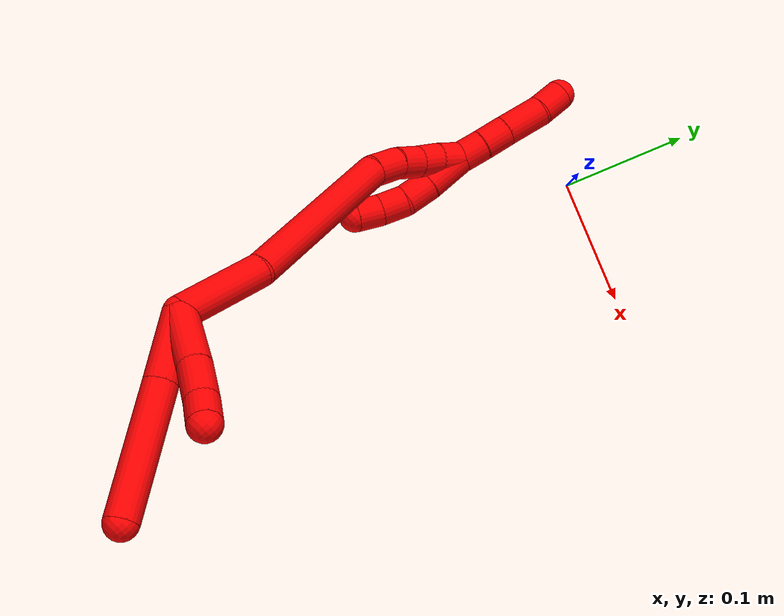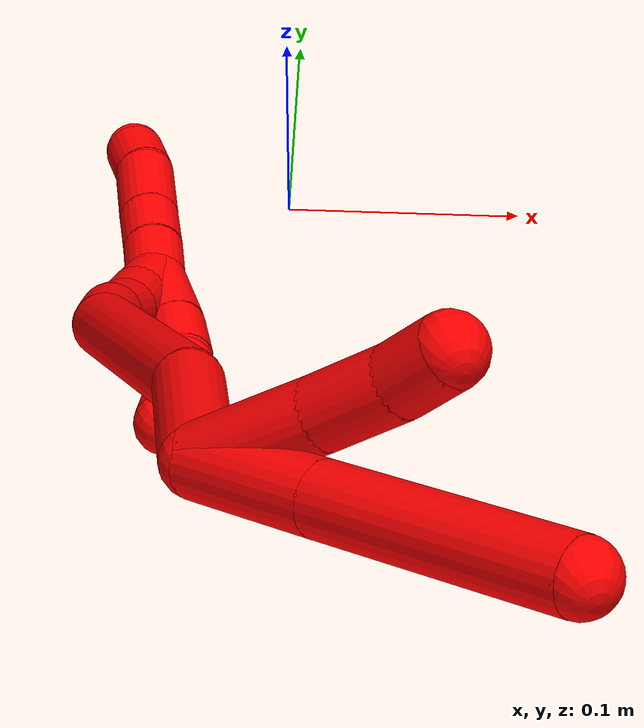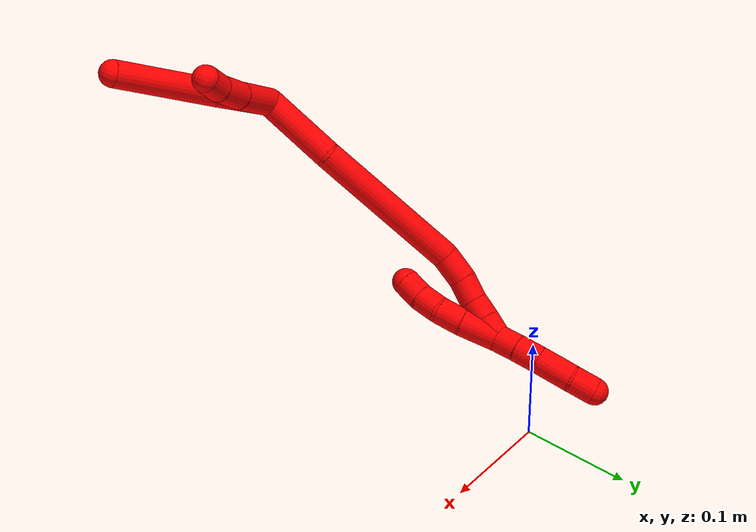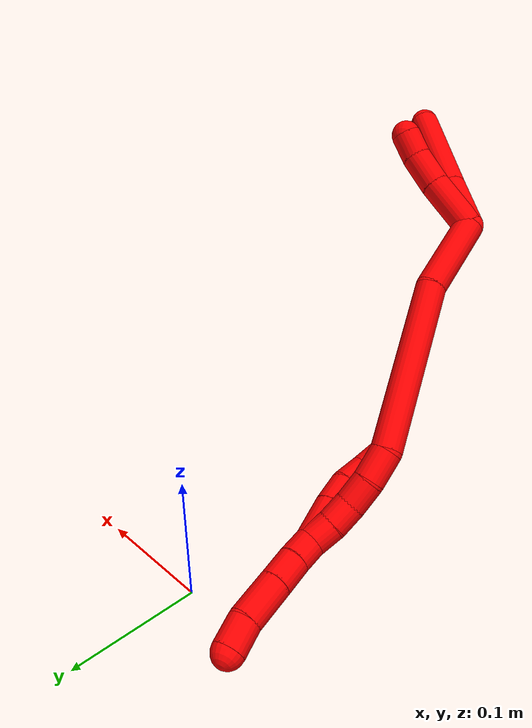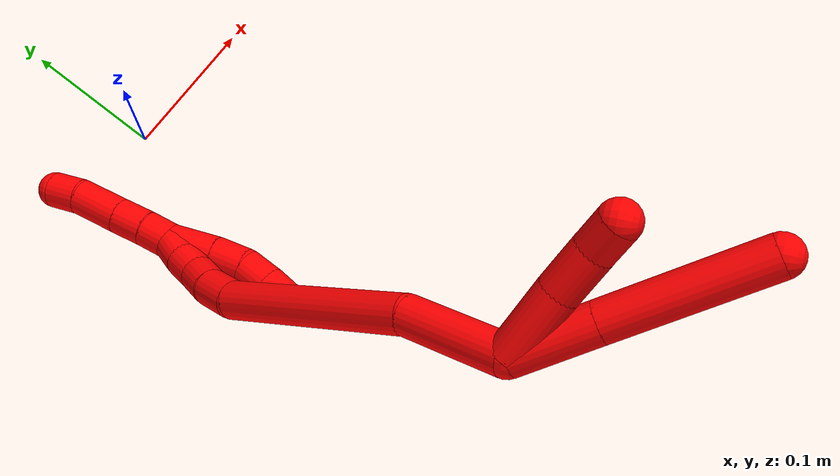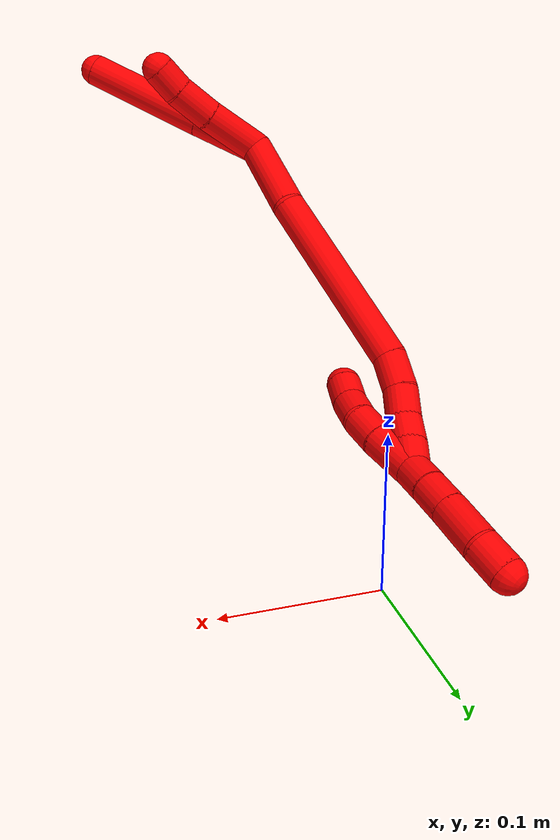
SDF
<sdf version="1.7">
 <world name="default">
  <model name="2">
   <static>0</static>
   <link name="2">
    <collision name="collision-cylinder-e_1_2_8">
     <pose>0.002971 0.01373 0.021989 -0.558176 0.114096 -0.032729</pose>
     <geometry><cylinder><radius>0.0125</radius><length>0.052188</length></cylinder></geometry>
     <surface>
      <friction><ode><mu>1.16</mu><mu2>1.16</mu2><slip1>0</slip1><slip2>0</slip2></ode></friction>
      <contact><ode><kp>1e+06</kp><kd>1</kd><max_vel>0</max_vel><min_depth>0.001</min_depth></ode></contact>
     </surface>
    </collision>
    <visual name="visual-cylinder-e_1_2_8">
     <pose>0.002971 0.01373 0.021989 -0.558176 0.114096 -0.032729</pose>
     <geometry><cylinder><radius>0.0125</radius><length>0.052188</length></cylinder></geometry>
     <material><ambient>1 0 0 1</ambient></material>
    </visual>
    <collision name="collision-cylinder-e_2_8_6">
     <pose>0.010781 0.053226 0.085265 -0.557927 0.099107 -0.028409</pose>
     <geometry><cylinder><radius>0.0125</radius><length>0.097812</length></cylinder></geometry>
     <surface>
      <friction><ode><mu>1.16</mu><mu2>1.16</mu2><slip1>0</slip1><slip2>0</slip2></ode></friction>
      <contact><ode><kp>1e+06</kp><kd>1</kd><max_vel>0</max_vel><min_depth>0.001</min_depth></ode></contact>
     </surface>
    </collision>
    <visual name="visual-cylinder-e_2_8_6">
     <pose>0.010781 0.053226 0.085265 -0.557927 0.099107 -0.028409</pose>
     <geometry><cylinder><radius>0.0125</radius><length>0.097812</length></cylinder></geometry>
     <material><ambient>1 0 0 1</ambient></material>
    </visual>
    <collision name="collision-cylinder-e_1_2_9">
     <pose>-0.000553 0.020883 0.010839 -1.09204 -0.023495 0.014277</pose>
     <geometry><cylinder><radius>0.0125</radius><length>0.047069</length></cylinder></geometry>
     <surface>
      <friction><ode><mu>1.16</mu><mu2>1.16</mu2><slip1>0</slip1><slip2>0</slip2></ode></friction>
      <contact><ode><kp>1e+06</kp><kd>1</kd><max_vel>0</max_vel><min_depth>0.001</min_depth></ode></contact>
     </surface>
    </collision>
    <visual name="visual-cylinder-e_1_2_9">
     <pose>-0.000553 0.020883 0.010839 -1.09204 -0.023495 0.014277</pose>
     <geometry><cylinder><radius>0.0125</radius><length>0.047069</length></cylinder></geometry>
     <material><ambient>1 0 0 1</ambient></material>
    </visual>
    <collision name="collision-cylinder-e_2_9_10">
     <pose>-0.002587 0.055014 0.029185 -1.05525 -0.096993 0.05655</pose>
     <geometry><cylinder><radius>0.0125</radius><length>0.030599</length></cylinder></geometry>
     <surface>
      <friction><ode><mu>1.16</mu><mu2>1.16</mu2><slip1>0</slip1><slip2>0</slip2></ode></friction>
      <contact><ode><kp>1e+06</kp><kd>1</kd><max_vel>0</max_vel><min_depth>0.001</min_depth></ode></contact>
     </surface>
    </collision>
    <visual name="visual-cylinder-e_2_9_10">
     <pose>-0.002587 0.055014 0.029185 -1.05525 -0.096993 0.05655</pose>
     <geometry><cylinder><radius>0.0125</radius><length>0.030599</length></cylinder></geometry>
     <material><ambient>1 0 0 1</ambient></material>
    </visual>
    <collision name="collision-cylinder-e_3_10_5">
     <pose>-0.006983 0.077582 0.042108 -1.04439 -0.264068 0.152558</pose>
     <geometry><cylinder><radius>0.0125</radius><length>0.022332</length></cylinder></geometry>
     <surface>
      <friction><ode><mu>1.16</mu><mu2>1.16</mu2><slip1>0</slip1><slip2>0</slip2></ode></friction>
      <contact><ode><kp>1e+06</kp><kd>1</kd><max_vel>0</max_vel><min_depth>0.001</min_depth></ode></contact>
     </surface>
    </collision>
    <visual name="visual-cylinder-e_3_10_5">
     <pose>-0.006983 0.077582 0.042108 -1.04439 -0.264068 0.152558</pose>
     <geometry><cylinder><radius>0.0125</radius><length>0.022332</length></cylinder></geometry>
     <material><ambient>1 0 0 1</ambient></material>
    </visual>
    <collision name="collision-cylinder-e_1_2_11">
     <pose>0.012553 0.000754 -0.032271 -3.11822 0.37088 -3.01717</pose>
     <geometry><cylinder><radius>0.0125</radius><length>0.069269</length></cylinder></geometry>
     <surface>
      <friction><ode><mu>1.16</mu><mu2>1.16</mu2><slip1>0</slip1><slip2>0</slip2></ode></friction>
      <contact><ode><kp>1e+06</kp><kd>1</kd><max_vel>0</max_vel><min_depth>0.001</min_depth></ode></contact>
     </surface>
    </collision>
    <visual name="visual-cylinder-e_1_2_11">
     <pose>0.012553 0.000754 -0.032271 -3.11822 0.37088 -3.01717</pose>
     <geometry><cylinder><radius>0.0125</radius><length>0.069269</length></cylinder></geometry>
     <material><ambient>1 0 0 1</ambient></material>
    </visual>
    <collision name="collision-cylinder-e_2_11_12">
     <pose>0.051142 -0.015639 -0.128501 2.87965 0.374627 1.9269</pose>
     <geometry><cylinder><radius>0.0125</radius><length>0.142306</length></cylinder></geometry>
     <surface>
      <friction><ode><mu>1.16</mu><mu2>1.16</mu2><slip1>0</slip1><slip2>0</slip2></ode></friction>
      <contact><ode><kp>1e+06</kp><kd>1</kd><max_vel>0</max_vel><min_depth>0.001</min_depth></ode></contact>
     </surface>
    </collision>
    <visual name="visual-cylinder-e_2_11_12">
     <pose>0.051142 -0.015639 -0.128501 2.87965 0.374627 1.9269</pose>
     <geometry><cylinder><radius>0.0125</radius><length>0.142306</length></cylinder></geometry>
     <material><ambient>1 0 0 1</ambient></material>
    </visual>
    <collision name="collision-cylinder-e_3_12_13">
     <pose>0.084207 -0.03287 -0.203448 3.13395 0.569045 3.11547</pose>
     <geometry><cylinder><radius>0.0125</radius><length>0.026087</length></cylinder></geometry>
     <surface>
      <friction><ode><mu>1.16</mu><mu2>1.16</mu2><slip1>0</slip1><slip2>0</slip2></ode></friction>
      <contact><ode><kp>1e+06</kp><kd>1</kd><max_vel>0</max_vel><min_depth>0.001</min_depth></ode></contact>
     </surface>
    </collision>
    <visual name="visual-cylinder-e_3_12_13">
     <pose>0.084207 -0.03287 -0.203448 3.13395 0.569045 3.11547</pose>
     <geometry><cylinder><radius>0.0125</radius><length>0.026087</length></cylinder></geometry>
     <material><ambient>1 0 0 1</ambient></material>
    </visual>
    <collision name="collision-cylinder-e_4_13_14">
     <pose>0.098605 -0.032009 -0.222678 -3.02746 0.72632 -2.84316</pose>
     <geometry><cylinder><radius>0.0125</radius><length>0.022193</length></cylinder></geometry>
     <surface>
      <friction><ode><mu>1.16</mu><mu2>1.16</mu2><slip1>0</slip1><slip2>0</slip2></ode></friction>
      <contact><ode><kp>1e+06</kp><kd>1</kd><max_vel>0</max_vel><min_depth>0.001</min_depth></ode></contact>
     </surface>
    </collision>
    <visual name="visual-cylinder-e_4_13_14">
     <pose>0.098605 -0.032009 -0.222678 -3.02746 0.72632 -2.84316</pose>
     <geometry><cylinder><radius>0.0125</radius><length>0.022193</length></cylinder></geometry>
     <material><ambient>1 0 0 1</ambient></material>
    </visual>
    <collision name="collision-cylinder-e_5_14_15">
     <pose>0.111433 -0.029168 -0.239116 -2.91419 0.575594 -2.40524</pose>
     <geometry><cylinder><radius>0.0125</radius><length>0.020055</length></cylinder></geometry>
     <surface>
      <friction><ode><mu>1.16</mu><mu2>1.16</mu2><slip1>0</slip1><slip2>0</slip2></ode></friction>
      <contact><ode><kp>1e+06</kp><kd>1</kd><max_vel>0</max_vel><min_depth>0.001</min_depth></ode></contact>
     </surface>
    </collision>
    <visual name="visual-cylinder-e_5_14_15">
     <pose>0.111433 -0.029168 -0.239116 -2.91419 0.575594 -2.40524</pose>
     <geometry><cylinder><radius>0.0125</radius><length>0.020055</length></cylinder></geometry>
     <material><ambient>1 0 0 1</ambient></material>
    </visual>
    <collision name="collision-cylinder-e_6_15_1">
     <pose>0.122287 -0.023988 -0.255121 -2.74354 0.567058 -1.93063</pose>
     <geometry><cylinder><radius>0.0125</radius><length>0.020089</length></cylinder></geometry>
     <surface>
      <friction><ode><mu>1.16</mu><mu2>1.16</mu2><slip1>0</slip1><slip2>0</slip2></ode></friction>
      <contact><ode><kp>1e+06</kp><kd>1</kd><max_vel>0</max_vel><min_depth>0.001</min_depth></ode></contact>
     </surface>
    </collision>
    <visual name="visual-cylinder-e_6_15_1">
     <pose>0.122287 -0.023988 -0.255121 -2.74354 0.567058 -1.93063</pose>
     <geometry><cylinder><radius>0.0125</radius><length>0.020089</length></cylinder></geometry>
     <material><ambient>1 0 0 1</ambient></material>
    </visual>
    <collision name="collision-cylinder-e_1_1_16">
     <pose>0.128294 -0.018158 -0.272968 -2.89324 0.05902 -0.464449</pose>
     <geometry><cylinder><radius>0.0125</radius><length>0.020745</length></cylinder></geometry>
     <surface>
      <friction><ode><mu>1.16</mu><mu2>1.16</mu2><slip1>0</slip1><slip2>0</slip2></ode></friction>
      <contact><ode><kp>1e+06</kp><kd>1</kd><max_vel>0</max_vel><min_depth>0.001</min_depth></ode></contact>
     </surface>
    </collision>
    <visual name="visual-cylinder-e_1_1_16">
     <pose>0.128294 -0.018158 -0.272968 -2.89324 0.05902 -0.464449</pose>
     <geometry><cylinder><radius>0.0125</radius><length>0.020745</length></cylinder></geometry>
     <material><ambient>1 0 0 1</ambient></material>
    </visual>
    <collision name="collision-cylinder-e_2_16_17">
     <pose>0.129974 -0.013524 -0.293943 -2.95289 0.095627 -0.936294</pose>
     <geometry><cylinder><radius>0.0125</radius><length>0.022374</length></cylinder></geometry>
     <surface>
      <friction><ode><mu>1.16</mu><mu2>1.16</mu2><slip1>0</slip1><slip2>0</slip2></ode></friction>
      <contact><ode><kp>1e+06</kp><kd>1</kd><max_vel>0</max_vel><min_depth>0.001</min_depth></ode></contact>
     </surface>
    </collision>
    <visual name="visual-cylinder-e_2_16_17">
     <pose>0.129974 -0.013524 -0.293943 -2.95289 0.095627 -0.936294</pose>
     <geometry><cylinder><radius>0.0125</radius><length>0.022374</length></cylinder></geometry>
     <material><ambient>1 0 0 1</ambient></material>
    </visual>
    <collision name="collision-cylinder-e_3_17_18">
     <pose>0.132993 -0.008142 -0.321468 -2.94558 0.114861 -1.05827</pose>
     <geometry><cylinder><radius>0.0125</radius><length>0.034046</length></cylinder></geometry>
     <surface>
      <friction><ode><mu>1.16</mu><mu2>1.16</mu2><slip1>0</slip1><slip2>0</slip2></ode></friction>
      <contact><ode><kp>1e+06</kp><kd>1</kd><max_vel>0</max_vel><min_depth>0.001</min_depth></ode></contact>
     </surface>
    </collision>
    <visual name="visual-cylinder-e_3_17_18">
     <pose>0.132993 -0.008142 -0.321468 -2.94558 0.114861 -1.05827</pose>
     <geometry><cylinder><radius>0.0125</radius><length>0.034046</length></cylinder></geometry>
     <material><ambient>1 0 0 1</ambient></material>
    </visual>
    <collision name="collision-cylinder-e_4_18_4">
     <pose>0.136566 -0.004826 -0.349357 -3.13968 0.142554 -3.11477</pose>
     <geometry><cylinder><radius>0.0125</radius><length>0.022835</length></cylinder></geometry>
     <surface>
      <friction><ode><mu>1.16</mu><mu2>1.16</mu2><slip1>0</slip1><slip2>0</slip2></ode></friction>
      <contact><ode><kp>1e+06</kp><kd>1</kd><max_vel>0</max_vel><min_depth>0.001</min_depth></ode></contact>
     </surface>
    </collision>
    <visual name="visual-cylinder-e_4_18_4">
     <pose>0.136566 -0.004826 -0.349357 -3.13968 0.142554 -3.11477</pose>
     <geometry><cylinder><radius>0.0125</radius><length>0.022835</length></cylinder></geometry>
     <material><ambient>1 0 0 1</ambient></material>
    </visual>
    <collision name="collision-cylinder-e_1_1_19">
     <pose>0.127063 -0.021529 -0.245618 0.047663 -0.035725 -0.000852</pose>
     <geometry><cylinder><radius>0.0125</radius><length>0.034687</length></cylinder></geometry>
     <surface>
      <friction><ode><mu>1.16</mu><mu2>1.16</mu2><slip1>0</slip1><slip2>0</slip2></ode></friction>
      <contact><ode><kp>1e+06</kp><kd>1</kd><max_vel>0</max_vel><min_depth>0.001</min_depth></ode></contact>
     </surface>
    </collision>
    <visual name="visual-cylinder-e_1_1_19">
     <pose>0.127063 -0.021529 -0.245618 0.047663 -0.035725 -0.000852</pose>
     <geometry><cylinder><radius>0.0125</radius><length>0.034687</length></cylinder></geometry>
     <material><ambient>1 0 0 1</ambient></material>
    </visual>
    <collision name="collision-cylinder-e_2_19_20">
     <pose>0.125231 -0.023812 -0.216761 0.125558 -0.103796 -0.006531</pose>
     <geometry><cylinder><radius>0.0125</radius><length>0.023398</length></cylinder></geometry>
     <surface>
      <friction><ode><mu>1.16</mu><mu2>1.16</mu2><slip1>0</slip1><slip2>0</slip2></ode></friction>
      <contact><ode><kp>1e+06</kp><kd>1</kd><max_vel>0</max_vel><min_depth>0.001</min_depth></ode></contact>
     </surface>
    </collision>
    <visual name="visual-cylinder-e_2_19_20">
     <pose>0.125231 -0.023812 -0.216761 0.125558 -0.103796 -0.006531</pose>
     <geometry><cylinder><radius>0.0125</radius><length>0.023398</length></cylinder></geometry>
     <material><ambient>1 0 0 1</ambient></material>
    </visual>
    <collision name="collision-cylinder-e_3_20_21">
     <pose>0.122266 -0.029085 -0.195507 0.374459 -0.166512 -0.031616</pose>
     <geometry><cylinder><radius>0.0125</radius><length>0.021157</length></cylinder></geometry>
     <surface>
      <friction><ode><mu>1.16</mu><mu2>1.16</mu2><slip1>0</slip1><slip2>0</slip2></ode></friction>
      <contact><ode><kp>1e+06</kp><kd>1</kd><max_vel>0</max_vel><min_depth>0.001</min_depth></ode></contact>
     </surface>
    </collision>
    <visual name="visual-cylinder-e_3_20_21">
     <pose>0.122266 -0.029085 -0.195507 0.374459 -0.166512 -0.031616</pose>
     <geometry><cylinder><radius>0.0125</radius><length>0.021157</length></cylinder></geometry>
     <material><ambient>1 0 0 1</ambient></material>
    </visual>
    <collision name="collision-cylinder-e_4_21_3">
     <pose>0.116975 -0.036376 -0.17668 0.364123 -0.347791 -0.064659</pose>
     <geometry><cylinder><radius>0.0125</radius><length>0.020758</length></cylinder></geometry>
     <surface>
      <friction><ode><mu>1.16</mu><mu2>1.16</mu2><slip1>0</slip1><slip2>0</slip2></ode></friction>
      <contact><ode><kp>1e+06</kp><kd>1</kd><max_vel>0</max_vel><min_depth>0.001</min_depth></ode></contact>
     </surface>
    </collision>
    <visual name="visual-cylinder-e_4_21_3">
     <pose>0.116975 -0.036376 -0.17668 0.364123 -0.347791 -0.064659</pose>
     <geometry><cylinder><radius>0.0125</radius><length>0.020758</length></cylinder></geometry>
     <material><ambient>1 0 0 1</ambient></material>
    </visual>
    <collision name="collision-sphere-3">
     <pose>0.113438 -0.039851 -0.167562 0 -0 0</pose>
     <geometry><sphere><radius>0.0125</radius></sphere></geometry>
     <surface>
      <friction><ode><mu>1.16</mu><mu2>1.16</mu2><slip1>0</slip1><slip2>0</slip2></ode></friction>
      <contact><ode><kp>1e+06</kp><kd>1</kd><max_vel>0</max_vel><min_depth>0.001</min_depth></ode></contact>
     </surface>
    </collision>
    <visual name="visual-sphere-3">
     <pose>0.113438 -0.039851 -0.167562 0 -0 0</pose>
     <geometry><sphere><radius>0.0125</radius></sphere></geometry>
     <material><ambient>1 0 0 1</ambient></material>
    </visual>
    <collision name="collision-sphere-21">
     <pose>0.120513 -0.032901 -0.185798 0 -0 0</pose>
     <geometry><sphere><radius>0.0125</radius></sphere></geometry>
     <surface>
      <friction><ode><mu>1.16</mu><mu2>1.16</mu2><slip1>0</slip1><slip2>0</slip2></ode></friction>
      <contact><ode><kp>1e+06</kp><kd>1</kd><max_vel>0</max_vel><min_depth>0.001</min_depth></ode></contact>
     </surface>
    </collision>
    <visual name="visual-sphere-21">
     <pose>0.120513 -0.032901 -0.185798 0 -0 0</pose>
     <geometry><sphere><radius>0.0125</radius></sphere></geometry>
     <material><ambient>1 0 0 1</ambient></material>
    </visual>
    <collision name="collision-sphere-20">
     <pose>0.124019 -0.025269 -0.205216 0 -0 0</pose>
     <geometry><sphere><radius>0.0125</radius></sphere></geometry>
     <surface>
      <friction><ode><mu>1.16</mu><mu2>1.16</mu2><slip1>0</slip1><slip2>0</slip2></ode></friction>
      <contact><ode><kp>1e+06</kp><kd>1</kd><max_vel>0</max_vel><min_depth>0.001</min_depth></ode></contact>
     </surface>
    </collision>
    <visual name="visual-sphere-20">
     <pose>0.124019 -0.025269 -0.205216 0 -0 0</pose>
     <geometry><sphere><radius>0.0125</radius></sphere></geometry>
     <material><ambient>1 0 0 1</ambient></material>
    </visual>
    <collision name="collision-sphere-19">
     <pose>0.126443 -0.022355 -0.228305 0 -0 0</pose>
     <geometry><sphere><radius>0.0125</radius></sphere></geometry>
     <surface>
      <friction><ode><mu>1.16</mu><mu2>1.16</mu2><slip1>0</slip1><slip2>0</slip2></ode></friction>
      <contact><ode><kp>1e+06</kp><kd>1</kd><max_vel>0</max_vel><min_depth>0.001</min_depth></ode></contact>
     </surface>
    </collision>
    <visual name="visual-sphere-19">
     <pose>0.126443 -0.022355 -0.228305 0 -0 0</pose>
     <geometry><sphere><radius>0.0125</radius></sphere></geometry>
     <material><ambient>1 0 0 1</ambient></material>
    </visual>
    <collision name="collision-sphere-5">
     <pose>-0.009898 0.086901 0.047524 0 -0 0</pose>
     <geometry><sphere><radius>0.0125</radius></sphere></geometry>
     <surface>
      <friction><ode><mu>1.16</mu><mu2>1.16</mu2><slip1>0</slip1><slip2>0</slip2></ode></friction>
      <contact><ode><kp>1e+06</kp><kd>1</kd><max_vel>0</max_vel><min_depth>0.001</min_depth></ode></contact>
     </surface>
    </collision>
    <visual name="visual-sphere-5">
     <pose>-0.009898 0.086901 0.047524 0 -0 0</pose>
     <geometry><sphere><radius>0.0125</radius></sphere></geometry>
     <material><ambient>1 0 0 1</ambient></material>
    </visual>
    <collision name="collision-sphere-10">
     <pose>-0.004069 0.068262 0.036692 0 -0 0</pose>
     <geometry><sphere><radius>0.0125</radius></sphere></geometry>
     <surface>
      <friction><ode><mu>1.16</mu><mu2>1.16</mu2><slip1>0</slip1><slip2>0</slip2></ode></friction>
      <contact><ode><kp>1e+06</kp><kd>1</kd><max_vel>0</max_vel><min_depth>0.001</min_depth></ode></contact>
     </surface>
    </collision>
    <visual name="visual-sphere-10">
     <pose>-0.004069 0.068262 0.036692 0 -0 0</pose>
     <geometry><sphere><radius>0.0125</radius></sphere></geometry>
     <material><ambient>1 0 0 1</ambient></material>
    </visual>
    <collision name="collision-sphere-6">
     <pose>0.01562 0.078991 0.126551 0 -0 0</pose>
     <geometry><sphere><radius>0.0125</radius></sphere></geometry>
     <surface>
      <friction><ode><mu>1.16</mu><mu2>1.16</mu2><slip1>0</slip1><slip2>0</slip2></ode></friction>
      <contact><ode><kp>1e+06</kp><kd>1</kd><max_vel>0</max_vel><min_depth>0.001</min_depth></ode></contact>
     </surface>
    </collision>
    <visual name="visual-sphere-6">
     <pose>0.01562 0.078991 0.126551 0 -0 0</pose>
     <geometry><sphere><radius>0.0125</radius></sphere></geometry>
     <material><ambient>1 0 0 1</ambient></material>
    </visual>
    <collision name="collision-sphere-9">
     <pose>-0.001106 0.041766 0.021678 0 -0 0</pose>
     <geometry><sphere><radius>0.0125</radius></sphere></geometry>
     <surface>
      <friction><ode><mu>1.16</mu><mu2>1.16</mu2><slip1>0</slip1><slip2>0</slip2></ode></friction>
      <contact><ode><kp>1e+06</kp><kd>1</kd><max_vel>0</max_vel><min_depth>0.001</min_depth></ode></contact>
     </surface>
    </collision>
    <visual name="visual-sphere-9">
     <pose>-0.001106 0.041766 0.021678 0 -0 0</pose>
     <geometry><sphere><radius>0.0125</radius></sphere></geometry>
     <material><ambient>1 0 0 1</ambient></material>
    </visual>
    <collision name="collision-sphere-2">
     <geometry><sphere><radius>0.0125</radius></sphere></geometry>
     <surface>
      <friction><ode><mu>1.16</mu><mu2>1.16</mu2><slip1>0</slip1><slip2>0</slip2></ode></friction>
      <contact><ode><kp>1e+06</kp><kd>1</kd><max_vel>0</max_vel><min_depth>0.001</min_depth></ode></contact>
     </surface>
    </collision>
    <visual name="visual-sphere-2">
     <geometry><sphere><radius>0.0125</radius></sphere></geometry>
     <material><ambient>1 0 0 1</ambient></material>
    </visual>
    <collision name="collision-sphere-8">
     <pose>0.005942 0.027461 0.043979 0 -0 0</pose>
     <geometry><sphere><radius>0.0125</radius></sphere></geometry>
     <surface>
      <friction><ode><mu>1.16</mu><mu2>1.16</mu2><slip1>0</slip1><slip2>0</slip2></ode></friction>
      <contact><ode><kp>1e+06</kp><kd>1</kd><max_vel>0</max_vel><min_depth>0.001</min_depth></ode></contact>
     </surface>
    </collision>
    <visual name="visual-sphere-8">
     <pose>0.005942 0.027461 0.043979 0 -0 0</pose>
     <geometry><sphere><radius>0.0125</radius></sphere></geometry>
     <material><ambient>1 0 0 1</ambient></material>
    </visual>
    <collision name="collision-sphere-11">
     <pose>0.025105 0.001509 -0.064541 0 -0 0</pose>
     <geometry><sphere><radius>0.0125</radius></sphere></geometry>
     <surface>
      <friction><ode><mu>1.16</mu><mu2>1.16</mu2><slip1>0</slip1><slip2>0</slip2></ode></friction>
      <contact><ode><kp>1e+06</kp><kd>1</kd><max_vel>0</max_vel><min_depth>0.001</min_depth></ode></contact>
     </surface>
    </collision>
    <visual name="visual-sphere-11">
     <pose>0.025105 0.001509 -0.064541 0 -0 0</pose>
     <geometry><sphere><radius>0.0125</radius></sphere></geometry>
     <material><ambient>1 0 0 1</ambient></material>
    </visual>
    <collision name="collision-sphere-12">
     <pose>0.077179 -0.032786 -0.19246 0 -0 0</pose>
     <geometry><sphere><radius>0.0125</radius></sphere></geometry>
     <surface>
      <friction><ode><mu>1.16</mu><mu2>1.16</mu2><slip1>0</slip1><slip2>0</slip2></ode></friction>
      <contact><ode><kp>1e+06</kp><kd>1</kd><max_vel>0</max_vel><min_depth>0.001</min_depth></ode></contact>
     </surface>
    </collision>
    <visual name="visual-sphere-12">
     <pose>0.077179 -0.032786 -0.19246 0 -0 0</pose>
     <geometry><sphere><radius>0.0125</radius></sphere></geometry>
     <material><ambient>1 0 0 1</ambient></material>
    </visual>
    <collision name="collision-sphere-13">
     <pose>0.091236 -0.032954 -0.214436 0 -0 0</pose>
     <geometry><sphere><radius>0.0125</radius></sphere></geometry>
     <surface>
      <friction><ode><mu>1.16</mu><mu2>1.16</mu2><slip1>0</slip1><slip2>0</slip2></ode></friction>
      <contact><ode><kp>1e+06</kp><kd>1</kd><max_vel>0</max_vel><min_depth>0.001</min_depth></ode></contact>
     </surface>
    </collision>
    <visual name="visual-sphere-13">
     <pose>0.091236 -0.032954 -0.214436 0 -0 0</pose>
     <geometry><sphere><radius>0.0125</radius></sphere></geometry>
     <material><ambient>1 0 0 1</ambient></material>
    </visual>
    <collision name="collision-sphere-14">
     <pose>0.105975 -0.031065 -0.230921 0 -0 0</pose>
     <geometry><sphere><radius>0.0125</radius></sphere></geometry>
     <surface>
      <friction><ode><mu>1.16</mu><mu2>1.16</mu2><slip1>0</slip1><slip2>0</slip2></ode></friction>
      <contact><ode><kp>1e+06</kp><kd>1</kd><max_vel>0</max_vel><min_depth>0.001</min_depth></ode></contact>
     </surface>
    </collision>
    <visual name="visual-sphere-14">
     <pose>0.105975 -0.031065 -0.230921 0 -0 0</pose>
     <geometry><sphere><radius>0.0125</radius></sphere></geometry>
     <material><ambient>1 0 0 1</ambient></material>
    </visual>
    <collision name="collision-sphere-15">
     <pose>0.116891 -0.027272 -0.247311 0 -0 0</pose>
     <geometry><sphere><radius>0.0125</radius></sphere></geometry>
     <surface>
      <friction><ode><mu>1.16</mu><mu2>1.16</mu2><slip1>0</slip1><slip2>0</slip2></ode></friction>
      <contact><ode><kp>1e+06</kp><kd>1</kd><max_vel>0</max_vel><min_depth>0.001</min_depth></ode></contact>
     </surface>
    </collision>
    <visual name="visual-sphere-15">
     <pose>0.116891 -0.027272 -0.247311 0 -0 0</pose>
     <geometry><sphere><radius>0.0125</radius></sphere></geometry>
     <material><ambient>1 0 0 1</ambient></material>
    </visual>
    <collision name="collision-sphere-1">
     <pose>0.127682 -0.020703 -0.262931 0 -0 0</pose>
     <geometry><sphere><radius>0.0125</radius></sphere></geometry>
     <surface>
      <friction><ode><mu>1.16</mu><mu2>1.16</mu2><slip1>0</slip1><slip2>0</slip2></ode></friction>
      <contact><ode><kp>1e+06</kp><kd>1</kd><max_vel>0</max_vel><min_depth>0.001</min_depth></ode></contact>
     </surface>
    </collision>
    <visual name="visual-sphere-1">
     <pose>0.127682 -0.020703 -0.262931 0 -0 0</pose>
     <geometry><sphere><radius>0.0125</radius></sphere></geometry>
     <material><ambient>1 0 0 1</ambient></material>
    </visual>
    <collision name="collision-sphere-18">
     <pose>0.134944 -0.004848 -0.338055 0 -0 0</pose>
     <geometry><sphere><radius>0.0125</radius></sphere></geometry>
     <surface>
      <friction><ode><mu>1.16</mu><mu2>1.16</mu2><slip1>0</slip1><slip2>0</slip2></ode></friction>
      <contact><ode><kp>1e+06</kp><kd>1</kd><max_vel>0</max_vel><min_depth>0.001</min_depth></ode></contact>
     </surface>
    </collision>
    <visual name="visual-sphere-18">
     <pose>0.134944 -0.004848 -0.338055 0 -0 0</pose>
     <geometry><sphere><radius>0.0125</radius></sphere></geometry>
     <material><ambient>1 0 0 1</ambient></material>
    </visual>
    <collision name="collision-sphere-16">
     <pose>0.128906 -0.015613 -0.283005 0 -0 0</pose>
     <geometry><sphere><radius>0.0125</radius></sphere></geometry>
     <surface>
      <friction><ode><mu>1.16</mu><mu2>1.16</mu2><slip1>0</slip1><slip2>0</slip2></ode></friction>
      <contact><ode><kp>1e+06</kp><kd>1</kd><max_vel>0</max_vel><min_depth>0.001</min_depth></ode></contact>
     </surface>
    </collision>
    <visual name="visual-sphere-16">
     <pose>0.128906 -0.015613 -0.283005 0 -0 0</pose>
     <geometry><sphere><radius>0.0125</radius></sphere></geometry>
     <material><ambient>1 0 0 1</ambient></material>
    </visual>
    <collision name="collision-sphere-17">
     <pose>0.131042 -0.011435 -0.304881 0 -0 0</pose>
     <geometry><sphere><radius>0.0125</radius></sphere></geometry>
     <surface>
      <friction><ode><mu>1.16</mu><mu2>1.16</mu2><slip1>0</slip1><slip2>0</slip2></ode></friction>
      <contact><ode><kp>1e+06</kp><kd>1</kd><max_vel>0</max_vel><min_depth>0.001</min_depth></ode></contact>
     </surface>
    </collision>
    <visual name="visual-sphere-17">
     <pose>0.131042 -0.011435 -0.304881 0 -0 0</pose>
     <geometry><sphere><radius>0.0125</radius></sphere></geometry>
     <material><ambient>1 0 0 1</ambient></material>
    </visual>
    <collision name="collision-sphere-4">
     <pose>0.138188 -0.004805 -0.360658 0 -0 0</pose>
     <geometry><sphere><radius>0.0125</radius></sphere></geometry>
     <surface>
      <friction><ode><mu>1.16</mu><mu2>1.16</mu2><slip1>0</slip1><slip2>0</slip2></ode></friction>
      <contact><ode><kp>1e+06</kp><kd>1</kd><max_vel>0</max_vel><min_depth>0.001</min_depth></ode></contact>
     </surface>
    </collision>
    <visual name="visual-sphere-4">
     <pose>0.138188 -0.004805 -0.360658 0 -0 0</pose>
     <geometry><sphere><radius>0.0125</radius></sphere></geometry>
     <material><ambient>1 0 0 1</ambient></material>
    </visual>
    <inertial>
     <pose>0.058321 0.002363 -0.108557 0 -0 0</pose>
     <mass>0.75</mass>
     <inertia>
      <ixx>0.000221</ixx>
      <ixy>0</ixy>
      <ixz>0</ixz>
      <iyy>0.000448</iyy>
      <iyz>0</iyz>
      <izz>-0.000127</izz>
     </inertia>
    </inertial>
   </link>
   <pose>-0.010956 -0.301442 0.215378 1.12534 0.976165 0.010808</pose>
  </model>
 </world>
</sdf>
